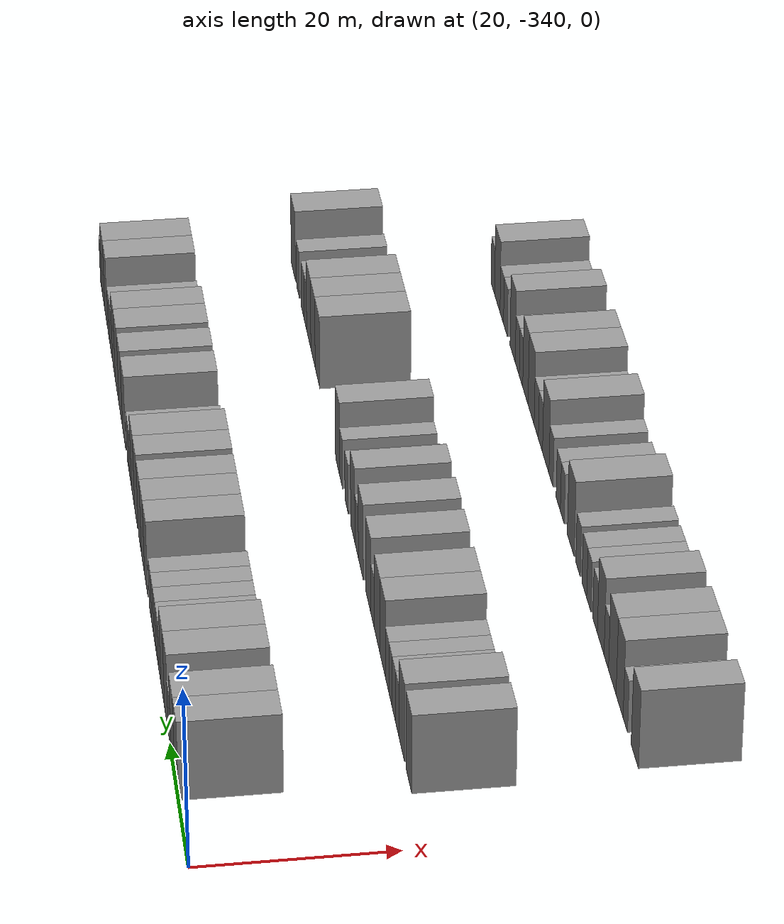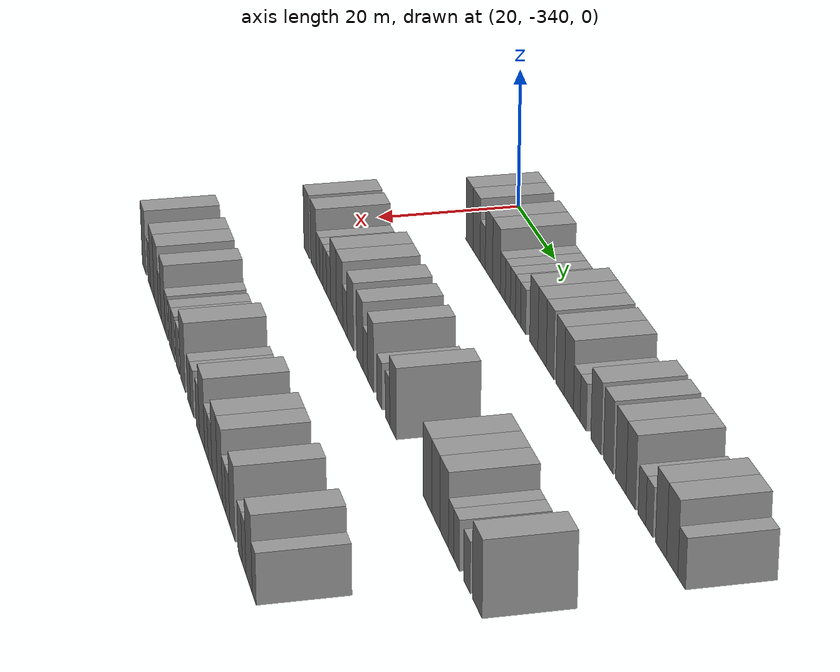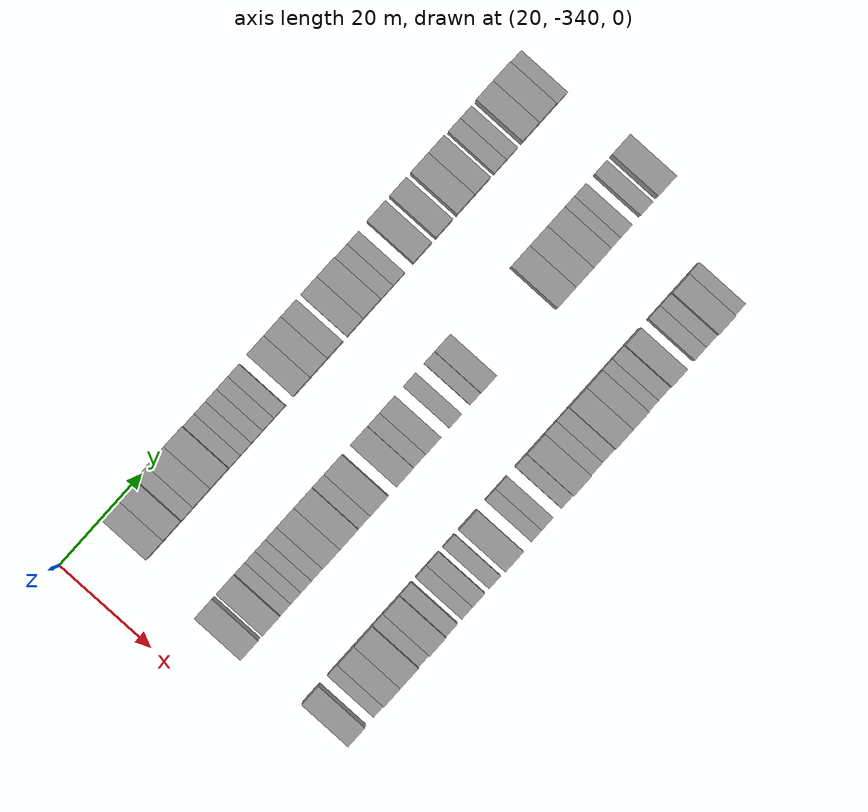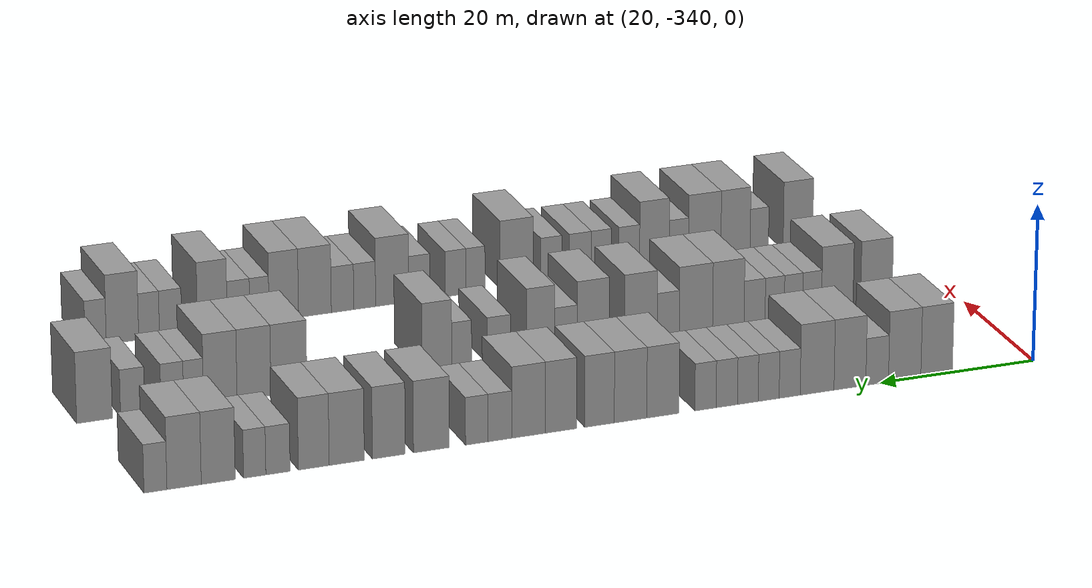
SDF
<sdf version="1.6">
 <world name="default">
  <model name="building_17">
   <static>1</static>
   <pose>25.0000 -327.3460 0 0.000000 0.000000 0.000000</pose>
   <link name="link">
    <pose>0 0 4.50 0 0 0</pose>
    <collision name="collision"><geometry><box><size>10.0000 4.1200 9.0000</size></box></geometry></collision>
    <visual name="visual">
     <cast_shadows>0</cast_shadows>
     <geometry><box><size>10.0000 4.1200 9.0000</size></box></geometry>
     <material>
      <script>
       <uri>model://grey_wall/materials/scripts</uri>
       <uri>model://grey_wall/materials/textures</uri>
       <name>vrc/grey_wall</name>
      </script>
     </material>
    </visual>
   </link>
  </model>
  <model name="building_18">
   <static>1</static>
   <pose>25.0000 -323.1835 0 0.000000 0.000000 0.000000</pose>
   <link name="link">
    <pose>0 0 4.50 0 0 0</pose>
    <collision name="collision"><geometry><box><size>10.0000 4.2051 9.0000</size></box></geometry></collision>
    <visual name="visual">
     <cast_shadows>0</cast_shadows>
     <geometry><box><size>10.0000 4.2051 9.0000</size></box></geometry>
     <material>
      <script>
       <uri>model://grey_wall/materials/scripts</uri>
       <uri>model://grey_wall/materials/textures</uri>
       <name>vrc/grey_wall</name>
      </script>
     </material>
    </visual>
   </link>
  </model>
  <model name="building_19">
   <static>1</static>
   <pose>25.0000 -319.6114 0 0.000000 0.000000 0.000000</pose>
   <link name="link">
    <pose>0 0 3.00 0 0 0</pose>
    <collision name="collision"><geometry><box><size>10.0000 2.9392 6.0000</size></box></geometry></collision>
    <visual name="visual">
     <cast_shadows>0</cast_shadows>
     <geometry><box><size>10.0000 2.9392 6.0000</size></box></geometry>
     <material>
      <script>
       <uri>model://grey_wall/materials/scripts</uri>
       <uri>model://grey_wall/materials/textures</uri>
       <name>vrc/grey_wall</name>
      </script>
     </material>
    </visual>
   </link>
  </model>
  <model name="building_20">
   <static>1</static>
   <pose>25.0000 -316.0873 0 0.000000 0.000000 0.000000</pose>
   <link name="link">
    <pose>0 0 4.50 0 0 0</pose>
    <collision name="collision"><geometry><box><size>10.0000 4.1088 9.0000</size></box></geometry></collision>
    <visual name="visual">
     <cast_shadows>0</cast_shadows>
     <geometry><box><size>10.0000 4.1088 9.0000</size></box></geometry>
     <material>
      <script>
       <uri>model://grey_wall/materials/scripts</uri>
       <uri>model://grey_wall/materials/textures</uri>
       <name>vrc/grey_wall</name>
      </script>
     </material>
    </visual>
   </link>
  </model>
  <model name="building_21">
   <static>1</static>
   <pose>25.0000 -311.8550 0 0.000000 0.000000 0.000000</pose>
   <link name="link">
    <pose>0 0 4.50 0 0 0</pose>
    <collision name="collision"><geometry><box><size>10.0000 4.3558 9.0000</size></box></geometry></collision>
    <visual name="visual">
     <cast_shadows>0</cast_shadows>
     <geometry><box><size>10.0000 4.3558 9.0000</size></box></geometry>
     <material>
      <script>
       <uri>model://grey_wall/materials/scripts</uri>
       <uri>model://grey_wall/materials/textures</uri>
       <name>vrc/grey_wall</name>
      </script>
     </material>
    </visual>
   </link>
  </model>
  <model name="building_22">
   <static>1</static>
   <pose>25.0000 -308.3280 0 0.000000 0.000000 0.000000</pose>
   <link name="link">
    <pose>0 0 3.00 0 0 0</pose>
    <collision name="collision"><geometry><box><size>10.0000 2.6983 6.0000</size></box></geometry></collision>
    <visual name="visual">
     <cast_shadows>0</cast_shadows>
     <geometry><box><size>10.0000 2.6983 6.0000</size></box></geometry>
     <material>
      <script>
       <uri>model://grey_wall/materials/scripts</uri>
       <uri>model://grey_wall/materials/textures</uri>
       <name>vrc/grey_wall</name>
      </script>
     </material>
    </visual>
   </link>
  </model>
  <model name="building_23">
   <static>1</static>
   <pose>25.0000 -305.6368 0 0.000000 0.000000 0.000000</pose>
   <link name="link">
    <pose>0 0 3.00 0 0 0</pose>
    <collision name="collision"><geometry><box><size>10.0000 2.6841 6.0000</size></box></geometry></collision>
    <visual name="visual">
     <cast_shadows>0</cast_shadows>
     <geometry><box><size>10.0000 2.6841 6.0000</size></box></geometry>
     <material>
      <script>
       <uri>model://grey_wall/materials/scripts</uri>
       <uri>model://grey_wall/materials/textures</uri>
       <name>vrc/grey_wall</name>
      </script>
     </material>
    </visual>
   </link>
  </model>
  <model name="building_24">
   <static>1</static>
   <pose>25.0000 -302.9718 0 0.000000 0.000000 0.000000</pose>
   <link name="link">
    <pose>0 0 3.00 0 0 0</pose>
    <collision name="collision"><geometry><box><size>10.0000 2.6458 6.0000</size></box></geometry></collision>
    <visual name="visual">
     <cast_shadows>0</cast_shadows>
     <geometry><box><size>10.0000 2.6458 6.0000</size></box></geometry>
     <material>
      <script>
       <uri>model://grey_wall/materials/scripts</uri>
       <uri>model://grey_wall/materials/textures</uri>
       <name>vrc/grey_wall</name>
      </script>
     </material>
    </visual>
   </link>
  </model>
  <model name="building_25">
   <static>1</static>
   <pose>25.0000 -300.2924 0 0.000000 0.000000 0.000000</pose>
   <link name="link">
    <pose>0 0 3.00 0 0 0</pose>
    <collision name="collision"><geometry><box><size>10.0000 2.7131 6.0000</size></box></geometry></collision>
    <visual name="visual">
     <cast_shadows>0</cast_shadows>
     <geometry><box><size>10.0000 2.7131 6.0000</size></box></geometry>
     <material>
      <script>
       <uri>model://grey_wall/materials/scripts</uri>
       <uri>model://grey_wall/materials/textures</uri>
       <name>vrc/grey_wall</name>
      </script>
     </material>
    </visual>
   </link>
  </model>
  <model name="building_26">
   <static>1</static>
   <pose>25.0000 -297.5843 0 0.000000 0.000000 0.000000</pose>
   <link name="link">
    <pose>0 0 3.00 0 0 0</pose>
    <collision name="collision"><geometry><box><size>10.0000 2.7031 6.0000</size></box></geometry></collision>
    <visual name="visual">
     <cast_shadows>0</cast_shadows>
     <geometry><box><size>10.0000 2.7031 6.0000</size></box></geometry>
     <material>
      <script>
       <uri>model://grey_wall/materials/scripts</uri>
       <uri>model://grey_wall/materials/textures</uri>
       <name>vrc/grey_wall</name>
      </script>
     </material>
    </visual>
   </link>
  </model>
  <model name="building_27">
   <static>1</static>
   <pose>25.0000 -292.1914 0 0.000000 0.000000 0.000000</pose>
   <link name="link">
    <pose>0 0 4.50 0 0 0</pose>
    <collision name="collision"><geometry><box><size>10.0000 4.0827 9.0000</size></box></geometry></collision>
    <visual name="visual">
     <cast_shadows>0</cast_shadows>
     <geometry><box><size>10.0000 4.0827 9.0000</size></box></geometry>
     <material>
      <script>
       <uri>model://grey_wall/materials/scripts</uri>
       <uri>model://grey_wall/materials/textures</uri>
       <name>vrc/grey_wall</name>
      </script>
     </material>
    </visual>
   </link>
  </model>
  <model name="building_28">
   <static>1</static>
   <pose>25.0000 -288.1037 0 0.000000 0.000000 0.000000</pose>
   <link name="link">
    <pose>0 0 4.50 0 0 0</pose>
    <collision name="collision"><geometry><box><size>10.0000 4.0928 9.0000</size></box></geometry></collision>
    <visual name="visual">
     <cast_shadows>0</cast_shadows>
     <geometry><box><size>10.0000 4.0928 9.0000</size></box></geometry>
     <material>
      <script>
       <uri>model://grey_wall/materials/scripts</uri>
       <uri>model://grey_wall/materials/textures</uri>
       <name>vrc/grey_wall</name>
      </script>
     </material>
    </visual>
   </link>
  </model>
  <model name="building_29">
   <static>1</static>
   <pose>25.0000 -284.2097 0 0.000000 0.000000 0.000000</pose>
   <link name="link">
    <pose>0 0 4.50 0 0 0</pose>
    <collision name="collision"><geometry><box><size>10.0000 3.6951 9.0000</size></box></geometry></collision>
    <visual name="visual">
     <cast_shadows>0</cast_shadows>
     <geometry><box><size>10.0000 3.6951 9.0000</size></box></geometry>
     <material>
      <script>
       <uri>model://grey_wall/materials/scripts</uri>
       <uri>model://grey_wall/materials/textures</uri>
       <name>vrc/grey_wall</name>
      </script>
     </material>
    </visual>
   </link>
  </model>
  <model name="building_30">
   <static>1</static>
   <pose>25.0000 -279.4100 0 0.000000 0.000000 0.000000</pose>
   <link name="link">
    <pose>0 0 4.50 0 0 0</pose>
    <collision name="collision"><geometry><box><size>10.0000 3.9044 9.0000</size></box></geometry></collision>
    <visual name="visual">
     <cast_shadows>0</cast_shadows>
     <geometry><box><size>10.0000 3.9044 9.0000</size></box></geometry>
     <material>
      <script>
       <uri>model://grey_wall/materials/scripts</uri>
       <uri>model://grey_wall/materials/textures</uri>
       <name>vrc/grey_wall</name>
      </script>
     </material>
    </visual>
   </link>
  </model>
  <model name="building_31">
   <static>1</static>
   <pose>25.0000 -275.3593 0 0.000000 0.000000 0.000000</pose>
   <link name="link">
    <pose>0 0 4.50 0 0 0</pose>
    <collision name="collision"><geometry><box><size>10.0000 4.1969 9.0000</size></box></geometry></collision>
    <visual name="visual">
     <cast_shadows>0</cast_shadows>
     <geometry><box><size>10.0000 4.1969 9.0000</size></box></geometry>
     <material>
      <script>
       <uri>model://grey_wall/materials/scripts</uri>
       <uri>model://grey_wall/materials/textures</uri>
       <name>vrc/grey_wall</name>
      </script>
     </material>
    </visual>
   </link>
  </model>
  <model name="building_32">
   <static>1</static>
   <pose>25.0000 -271.7904 0 0.000000 0.000000 0.000000</pose>
   <link name="link">
    <pose>0 0 3.00 0 0 0</pose>
    <collision name="collision"><geometry><box><size>10.0000 2.9410 6.0000</size></box></geometry></collision>
    <visual name="visual">
     <cast_shadows>0</cast_shadows>
     <geometry><box><size>10.0000 2.9410 6.0000</size></box></geometry>
     <material>
      <script>
       <uri>model://grey_wall/materials/scripts</uri>
       <uri>model://grey_wall/materials/textures</uri>
       <name>vrc/grey_wall</name>
      </script>
     </material>
    </visual>
   </link>
  </model>
  <model name="building_33">
   <static>1</static>
   <pose>25.0000 -268.9199 0 0.000000 0.000000 0.000000</pose>
   <link name="link">
    <pose>0 0 3.00 0 0 0</pose>
    <collision name="collision"><geometry><box><size>10.0000 2.8000 6.0000</size></box></geometry></collision>
    <visual name="visual">
     <cast_shadows>0</cast_shadows>
     <geometry><box><size>10.0000 2.8000 6.0000</size></box></geometry>
     <material>
      <script>
       <uri>model://grey_wall/materials/scripts</uri>
       <uri>model://grey_wall/materials/textures</uri>
       <name>vrc/grey_wall</name>
      </script>
     </material>
    </visual>
   </link>
  </model>
  <model name="building_34">
   <static>1</static>
   <pose>25.0000 -263.3124 0 0.000000 0.000000 0.000000</pose>
   <link name="link">
    <pose>0 0 4.50 0 0 0</pose>
    <collision name="collision"><geometry><box><size>10.0000 4.4150 9.0000</size></box></geometry></collision>
    <visual name="visual">
     <cast_shadows>0</cast_shadows>
     <geometry><box><size>10.0000 4.4150 9.0000</size></box></geometry>
     <material>
      <script>
       <uri>model://grey_wall/materials/scripts</uri>
       <uri>model://grey_wall/materials/textures</uri>
       <name>vrc/grey_wall</name>
      </script>
     </material>
    </visual>
   </link>
  </model>
  <model name="building_35">
   <static>1</static>
   <pose>25.0000 -258.0931 0 0.000000 0.000000 0.000000</pose>
   <link name="link">
    <pose>0 0 4.50 0 0 0</pose>
    <collision name="collision"><geometry><box><size>10.0000 4.0236 9.0000</size></box></geometry></collision>
    <visual name="visual">
     <cast_shadows>0</cast_shadows>
     <geometry><box><size>10.0000 4.0236 9.0000</size></box></geometry>
     <material>
      <script>
       <uri>model://grey_wall/materials/scripts</uri>
       <uri>model://grey_wall/materials/textures</uri>
       <name>vrc/grey_wall</name>
      </script>
     </material>
    </visual>
   </link>
  </model>
  <model name="building_36">
   <static>1</static>
   <pose>25.0000 -252.9448 0 0.000000 0.000000 0.000000</pose>
   <link name="link">
    <pose>0 0 4.50 0 0 0</pose>
    <collision name="collision"><geometry><box><size>10.0000 4.2731 9.0000</size></box></geometry></collision>
    <visual name="visual">
     <cast_shadows>0</cast_shadows>
     <geometry><box><size>10.0000 4.2731 9.0000</size></box></geometry>
     <material>
      <script>
       <uri>model://grey_wall/materials/scripts</uri>
       <uri>model://grey_wall/materials/textures</uri>
       <name>vrc/grey_wall</name>
      </script>
     </material>
    </visual>
   </link>
  </model>
  <model name="building_37">
   <static>1</static>
   <pose>25.0000 -248.9344 0 0.000000 0.000000 0.000000</pose>
   <link name="link">
    <pose>0 0 4.50 0 0 0</pose>
    <collision name="collision"><geometry><box><size>10.0000 3.7476 9.0000</size></box></geometry></collision>
    <visual name="visual">
     <cast_shadows>0</cast_shadows>
     <geometry><box><size>10.0000 3.7476 9.0000</size></box></geometry>
     <material>
      <script>
       <uri>model://grey_wall/materials/scripts</uri>
       <uri>model://grey_wall/materials/textures</uri>
       <name>vrc/grey_wall</name>
      </script>
     </material>
    </visual>
   </link>
  </model>
  <model name="building_38">
   <static>1</static>
   <pose>25.0000 -244.5937 0 0.000000 0.000000 0.000000</pose>
   <link name="link">
    <pose>0 0 3.00 0 0 0</pose>
    <collision name="collision"><geometry><box><size>10.0000 2.9339 6.0000</size></box></geometry></collision>
    <visual name="visual">
     <cast_shadows>0</cast_shadows>
     <geometry><box><size>10.0000 2.9339 6.0000</size></box></geometry>
     <material>
      <script>
       <uri>model://grey_wall/materials/scripts</uri>
       <uri>model://grey_wall/materials/textures</uri>
       <name>vrc/grey_wall</name>
      </script>
     </material>
    </visual>
   </link>
  </model>
  <model name="building_39">
   <static>1</static>
   <pose>25.0000 -241.7820 0 0.000000 0.000000 0.000000</pose>
   <link name="link">
    <pose>0 0 3.00 0 0 0</pose>
    <collision name="collision"><geometry><box><size>10.0000 2.6894 6.0000</size></box></geometry></collision>
    <visual name="visual">
     <cast_shadows>0</cast_shadows>
     <geometry><box><size>10.0000 2.6894 6.0000</size></box></geometry>
     <material>
      <script>
       <uri>model://grey_wall/materials/scripts</uri>
       <uri>model://grey_wall/materials/textures</uri>
       <name>vrc/grey_wall</name>
      </script>
     </material>
    </visual>
   </link>
  </model>
  <model name="building_40">
   <static>1</static>
   <pose>25.0000 -237.3961 0 0.000000 0.000000 0.000000</pose>
   <link name="link">
    <pose>0 0 4.50 0 0 0</pose>
    <collision name="collision"><geometry><box><size>10.0000 4.0824 9.0000</size></box></geometry></collision>
    <visual name="visual">
     <cast_shadows>0</cast_shadows>
     <geometry><box><size>10.0000 4.0824 9.0000</size></box></geometry>
     <material>
      <script>
       <uri>model://grey_wall/materials/scripts</uri>
       <uri>model://grey_wall/materials/textures</uri>
       <name>vrc/grey_wall</name>
      </script>
     </material>
    </visual>
   </link>
  </model>
  <model name="building_41">
   <static>1</static>
   <pose>25.0000 -233.3007 0 0.000000 0.000000 0.000000</pose>
   <link name="link">
    <pose>0 0 4.50 0 0 0</pose>
    <collision name="collision"><geometry><box><size>10.0000 4.1085 9.0000</size></box></geometry></collision>
    <visual name="visual">
     <cast_shadows>0</cast_shadows>
     <geometry><box><size>10.0000 4.1085 9.0000</size></box></geometry>
     <material>
      <script>
       <uri>model://grey_wall/materials/scripts</uri>
       <uri>model://grey_wall/materials/textures</uri>
       <name>vrc/grey_wall</name>
      </script>
     </material>
    </visual>
   </link>
  </model>
  <model name="building_42">
   <static>1</static>
   <pose>25.0000 -229.8728 0 0.000000 0.000000 0.000000</pose>
   <link name="link">
    <pose>0 0 3.00 0 0 0</pose>
    <collision name="collision"><geometry><box><size>10.0000 2.7473 6.0000</size></box></geometry></collision>
    <visual name="visual">
     <cast_shadows>0</cast_shadows>
     <geometry><box><size>10.0000 2.7473 6.0000</size></box></geometry>
     <material>
      <script>
       <uri>model://grey_wall/materials/scripts</uri>
       <uri>model://grey_wall/materials/textures</uri>
       <name>vrc/grey_wall</name>
      </script>
     </material>
    </visual>
   </link>
  </model>
  <model name="building_207">
   <static>1</static>
   <pose>47.0000 -329.0703 0 0.000000 0.000000 0.000000</pose>
   <link name="link">
    <pose>0 0 4.50 0 0 0</pose>
    <collision name="collision"><geometry><box><size>10.0000 4.2202 9.0000</size></box></geometry></collision>
    <visual name="visual">
     <cast_shadows>0</cast_shadows>
     <geometry><box><size>10.0000 4.2202 9.0000</size></box></geometry>
     <material>
      <script>
       <uri>model://grey_wall/materials/scripts</uri>
       <uri>model://grey_wall/materials/textures</uri>
       <name>vrc/grey_wall</name>
      </script>
     </material>
    </visual>
   </link>
  </model>
  <model name="building_208">
   <static>1</static>
   <pose>47.0000 -323.8616 0 0.000000 0.000000 0.000000</pose>
   <link name="link">
    <pose>0 0 4.50 0 0 0</pose>
    <collision name="collision"><geometry><box><size>10.0000 4.1972 9.0000</size></box></geometry></collision>
    <visual name="visual">
     <cast_shadows>0</cast_shadows>
     <geometry><box><size>10.0000 4.1972 9.0000</size></box></geometry>
     <material>
      <script>
       <uri>model://grey_wall/materials/scripts</uri>
       <uri>model://grey_wall/materials/textures</uri>
       <name>vrc/grey_wall</name>
      </script>
     </material>
    </visual>
   </link>
  </model>
  <model name="building_209">
   <static>1</static>
   <pose>47.0000 -320.5207 0 0.000000 0.000000 0.000000</pose>
   <link name="link">
    <pose>0 0 3.00 0 0 0</pose>
    <collision name="collision"><geometry><box><size>10.0000 2.4846 6.0000</size></box></geometry></collision>
    <visual name="visual">
     <cast_shadows>0</cast_shadows>
     <geometry><box><size>10.0000 2.4846 6.0000</size></box></geometry>
     <material>
      <script>
       <uri>model://grey_wall/materials/scripts</uri>
       <uri>model://grey_wall/materials/textures</uri>
       <name>vrc/grey_wall</name>
      </script>
     </material>
    </visual>
   </link>
  </model>
  <model name="building_210">
   <static>1</static>
   <pose>47.0000 -318.0544 0 0.000000 0.000000 0.000000</pose>
   <link name="link">
    <pose>0 0 3.00 0 0 0</pose>
    <collision name="collision"><geometry><box><size>10.0000 2.4481 6.0000</size></box></geometry></collision>
    <visual name="visual">
     <cast_shadows>0</cast_shadows>
     <geometry><box><size>10.0000 2.4481 6.0000</size></box></geometry>
     <material>
      <script>
       <uri>model://grey_wall/materials/scripts</uri>
       <uri>model://grey_wall/materials/textures</uri>
       <name>vrc/grey_wall</name>
      </script>
     </material>
    </visual>
   </link>
  </model>
  <model name="building_211">
   <static>1</static>
   <pose>47.0000 -315.5675 0 0.000000 0.000000 0.000000</pose>
   <link name="link">
    <pose>0 0 3.00 0 0 0</pose>
    <collision name="collision"><geometry><box><size>10.0000 2.5256 6.0000</size></box></geometry></collision>
    <visual name="visual">
     <cast_shadows>0</cast_shadows>
     <geometry><box><size>10.0000 2.5256 6.0000</size></box></geometry>
     <material>
      <script>
       <uri>model://grey_wall/materials/scripts</uri>
       <uri>model://grey_wall/materials/textures</uri>
       <name>vrc/grey_wall</name>
      </script>
     </material>
    </visual>
   </link>
  </model>
  <model name="building_212">
   <static>1</static>
   <pose>47.0000 -312.9240 0 0.000000 0.000000 0.000000</pose>
   <link name="link">
    <pose>0 0 3.00 0 0 0</pose>
    <collision name="collision"><geometry><box><size>10.0000 2.7615 6.0000</size></box></geometry></collision>
    <visual name="visual">
     <cast_shadows>0</cast_shadows>
     <geometry><box><size>10.0000 2.7615 6.0000</size></box></geometry>
     <material>
      <script>
       <uri>model://grey_wall/materials/scripts</uri>
       <uri>model://grey_wall/materials/textures</uri>
       <name>vrc/grey_wall</name>
      </script>
     </material>
    </visual>
   </link>
  </model>
  <model name="building_213">
   <static>1</static>
   <pose>47.0000 -309.4773 0 0.000000 0.000000 0.000000</pose>
   <link name="link">
    <pose>0 0 4.50 0 0 0</pose>
    <collision name="collision"><geometry><box><size>10.0000 4.1317 9.0000</size></box></geometry></collision>
    <visual name="visual">
     <cast_shadows>0</cast_shadows>
     <geometry><box><size>10.0000 4.1317 9.0000</size></box></geometry>
     <material>
      <script>
       <uri>model://grey_wall/materials/scripts</uri>
       <uri>model://grey_wall/materials/textures</uri>
       <name>vrc/grey_wall</name>
      </script>
     </material>
    </visual>
   </link>
  </model>
  <model name="building_214">
   <static>1</static>
   <pose>47.0000 -305.2326 0 0.000000 0.000000 0.000000</pose>
   <link name="link">
    <pose>0 0 4.50 0 0 0</pose>
    <collision name="collision"><geometry><box><size>10.0000 4.3578 9.0000</size></box></geometry></collision>
    <visual name="visual">
     <cast_shadows>0</cast_shadows>
     <geometry><box><size>10.0000 4.3578 9.0000</size></box></geometry>
     <material>
      <script>
       <uri>model://grey_wall/materials/scripts</uri>
       <uri>model://grey_wall/materials/textures</uri>
       <name>vrc/grey_wall</name>
      </script>
     </material>
    </visual>
   </link>
  </model>
  <model name="building_215">
   <static>1</static>
   <pose>47.0000 -301.6247 0 0.000000 0.000000 0.000000</pose>
   <link name="link">
    <pose>0 0 3.00 0 0 0</pose>
    <collision name="collision"><geometry><box><size>10.0000 2.8580 6.0000</size></box></geometry></collision>
    <visual name="visual">
     <cast_shadows>0</cast_shadows>
     <geometry><box><size>10.0000 2.8580 6.0000</size></box></geometry>
     <material>
      <script>
       <uri>model://grey_wall/materials/scripts</uri>
       <uri>model://grey_wall/materials/textures</uri>
       <name>vrc/grey_wall</name>
      </script>
     </material>
    </visual>
   </link>
  </model>
  <model name="building_216">
   <static>1</static>
   <pose>47.0000 -298.0639 0 0.000000 0.000000 0.000000</pose>
   <link name="link">
    <pose>0 0 4.50 0 0 0</pose>
    <collision name="collision"><geometry><box><size>10.0000 4.2637 9.0000</size></box></geometry></collision>
    <visual name="visual">
     <cast_shadows>0</cast_shadows>
     <geometry><box><size>10.0000 4.2637 9.0000</size></box></geometry>
     <material>
      <script>
       <uri>model://grey_wall/materials/scripts</uri>
       <uri>model://grey_wall/materials/textures</uri>
       <name>vrc/grey_wall</name>
      </script>
     </material>
    </visual>
   </link>
  </model>
  <model name="building_217">
   <static>1</static>
   <pose>47.0000 -291.8824 0 0.000000 0.000000 0.000000</pose>
   <link name="link">
    <pose>0 0 4.50 0 0 0</pose>
    <collision name="collision"><geometry><box><size>10.0000 4.0992 9.0000</size></box></geometry></collision>
    <visual name="visual">
     <cast_shadows>0</cast_shadows>
     <geometry><box><size>10.0000 4.0992 9.0000</size></box></geometry>
     <material>
      <script>
       <uri>model://grey_wall/materials/scripts</uri>
       <uri>model://grey_wall/materials/textures</uri>
       <name>vrc/grey_wall</name>
      </script>
     </material>
    </visual>
   </link>
  </model>
  <model name="building_218">
   <static>1</static>
   <pose>47.0000 -288.3813 0 0.000000 0.000000 0.000000</pose>
   <link name="link">
    <pose>0 0 3.00 0 0 0</pose>
    <collision name="collision"><geometry><box><size>10.0000 2.9030 6.0000</size></box></geometry></collision>
    <visual name="visual">
     <cast_shadows>0</cast_shadows>
     <geometry><box><size>10.0000 2.9030 6.0000</size></box></geometry>
     <material>
      <script>
       <uri>model://grey_wall/materials/scripts</uri>
       <uri>model://grey_wall/materials/textures</uri>
       <name>vrc/grey_wall</name>
      </script>
     </material>
    </visual>
   </link>
  </model>
  <model name="building_219">
   <static>1</static>
   <pose>47.0000 -285.1009 0 0.000000 0.000000 0.000000</pose>
   <link name="link">
    <pose>0 0 4.50 0 0 0</pose>
    <collision name="collision"><geometry><box><size>10.0000 3.6578 9.0000</size></box></geometry></collision>
    <visual name="visual">
     <cast_shadows>0</cast_shadows>
     <geometry><box><size>10.0000 3.6578 9.0000</size></box></geometry>
     <material>
      <script>
       <uri>model://grey_wall/materials/scripts</uri>
       <uri>model://grey_wall/materials/textures</uri>
       <name>vrc/grey_wall</name>
      </script>
     </material>
    </visual>
   </link>
  </model>
  <model name="building_220">
   <static>1</static>
   <pose>47.0000 -279.7737 0 0.000000 0.000000 0.000000</pose>
   <link name="link">
    <pose>0 0 3.00 0 0 0</pose>
    <collision name="collision"><geometry><box><size>10.0000 2.9966 6.0000</size></box></geometry></collision>
    <visual name="visual">
     <cast_shadows>0</cast_shadows>
     <geometry><box><size>10.0000 2.9966 6.0000</size></box></geometry>
     <material>
      <script>
       <uri>model://grey_wall/materials/scripts</uri>
       <uri>model://grey_wall/materials/textures</uri>
       <name>vrc/grey_wall</name>
      </script>
     </material>
    </visual>
   </link>
  </model>
  <model name="building_221">
   <static>1</static>
   <pose>47.0000 -275.0089 0 0.000000 0.000000 0.000000</pose>
   <link name="link">
    <pose>0 0 3.00 0 0 0</pose>
    <collision name="collision"><geometry><box><size>10.0000 2.5331 6.0000</size></box></geometry></collision>
    <visual name="visual">
     <cast_shadows>0</cast_shadows>
     <geometry><box><size>10.0000 2.5331 6.0000</size></box></geometry>
     <material>
      <script>
       <uri>model://grey_wall/materials/scripts</uri>
       <uri>model://grey_wall/materials/textures</uri>
       <name>vrc/grey_wall</name>
      </script>
     </material>
    </visual>
   </link>
  </model>
  <model name="building_222">
   <static>1</static>
   <pose>47.0000 -271.8632 0 0.000000 0.000000 0.000000</pose>
   <link name="link">
    <pose>0 0 4.50 0 0 0</pose>
    <collision name="collision"><geometry><box><size>10.0000 3.7582 9.0000</size></box></geometry></collision>
    <visual name="visual">
     <cast_shadows>0</cast_shadows>
     <geometry><box><size>10.0000 3.7582 9.0000</size></box></geometry>
     <material>
      <script>
       <uri>model://grey_wall/materials/scripts</uri>
       <uri>model://grey_wall/materials/textures</uri>
       <name>vrc/grey_wall</name>
      </script>
     </material>
    </visual>
   </link>
  </model>
  <model name="building_223">
   <static>1</static>
   <pose>47.0000 -253.2428 0 0.000000 0.000000 0.000000</pose>
   <link name="link">
    <pose>0 0 4.50 0 0 0</pose>
    <collision name="collision"><geometry><box><size>10.0000 4.4942 9.0000</size></box></geometry></collision>
    <visual name="visual">
     <cast_shadows>0</cast_shadows>
     <geometry><box><size>10.0000 4.4942 9.0000</size></box></geometry>
     <material>
      <script>
       <uri>model://grey_wall/materials/scripts</uri>
       <uri>model://grey_wall/materials/textures</uri>
       <name>vrc/grey_wall</name>
      </script>
     </material>
    </visual>
   </link>
  </model>
  <model name="building_224">
   <static>1</static>
   <pose>47.0000 -248.8892 0 0.000000 0.000000 0.000000</pose>
   <link name="link">
    <pose>0 0 4.50 0 0 0</pose>
    <collision name="collision"><geometry><box><size>10.0000 4.2130 9.0000</size></box></geometry></collision>
    <visual name="visual">
     <cast_shadows>0</cast_shadows>
     <geometry><box><size>10.0000 4.2130 9.0000</size></box></geometry>
     <material>
      <script>
       <uri>model://grey_wall/materials/scripts</uri>
       <uri>model://grey_wall/materials/textures</uri>
       <name>vrc/grey_wall</name>
      </script>
     </material>
    </visual>
   </link>
  </model>
  <model name="building_225">
   <static>1</static>
   <pose>47.0000 -244.7073 0 0.000000 0.000000 0.000000</pose>
   <link name="link">
    <pose>0 0 4.50 0 0 0</pose>
    <collision name="collision"><geometry><box><size>10.0000 4.1508 9.0000</size></box></geometry></collision>
    <visual name="visual">
     <cast_shadows>0</cast_shadows>
     <geometry><box><size>10.0000 4.1508 9.0000</size></box></geometry>
     <material>
      <script>
       <uri>model://grey_wall/materials/scripts</uri>
       <uri>model://grey_wall/materials/textures</uri>
       <name>vrc/grey_wall</name>
      </script>
     </material>
    </visual>
   </link>
  </model>
  <model name="building_226">
   <static>1</static>
   <pose>47.0000 -241.4015 0 0.000000 0.000000 0.000000</pose>
   <link name="link">
    <pose>0 0 3.00 0 0 0</pose>
    <collision name="collision"><geometry><box><size>10.0000 2.4606 6.0000</size></box></geometry></collision>
    <visual name="visual">
     <cast_shadows>0</cast_shadows>
     <geometry><box><size>10.0000 2.4606 6.0000</size></box></geometry>
     <material>
      <script>
       <uri>model://grey_wall/materials/scripts</uri>
       <uri>model://grey_wall/materials/textures</uri>
       <name>vrc/grey_wall</name>
      </script>
     </material>
    </visual>
   </link>
  </model>
  <model name="building_227">
   <static>1</static>
   <pose>47.0000 -238.7744 0 0.000000 0.000000 0.000000</pose>
   <link name="link">
    <pose>0 0 3.00 0 0 0</pose>
    <collision name="collision"><geometry><box><size>10.0000 2.7937 6.0000</size></box></geometry></collision>
    <visual name="visual">
     <cast_shadows>0</cast_shadows>
     <geometry><box><size>10.0000 2.7937 6.0000</size></box></geometry>
     <material>
      <script>
       <uri>model://grey_wall/materials/scripts</uri>
       <uri>model://grey_wall/materials/textures</uri>
       <name>vrc/grey_wall</name>
      </script>
     </material>
    </visual>
   </link>
  </model>
  <model name="building_228">
   <static>1</static>
   <pose>47.0000 -233.8921 0 0.000000 0.000000 0.000000</pose>
   <link name="link">
    <pose>0 0 3.00 0 0 0</pose>
    <collision name="collision"><geometry><box><size>10.0000 2.9710 6.0000</size></box></geometry></collision>
    <visual name="visual">
     <cast_shadows>0</cast_shadows>
     <geometry><box><size>10.0000 2.9710 6.0000</size></box></geometry>
     <material>
      <script>
       <uri>model://grey_wall/materials/scripts</uri>
       <uri>model://grey_wall/materials/textures</uri>
       <name>vrc/grey_wall</name>
      </script>
     </material>
    </visual>
   </link>
  </model>
  <model name="building_229">
   <static>1</static>
   <pose>47.0000 -229.2226 0 0.000000 0.000000 0.000000</pose>
   <link name="link">
    <pose>0 0 4.50 0 0 0</pose>
    <collision name="collision"><geometry><box><size>10.0000 4.3680 9.0000</size></box></geometry></collision>
    <visual name="visual">
     <cast_shadows>0</cast_shadows>
     <geometry><box><size>10.0000 4.3680 9.0000</size></box></geometry>
     <material>
      <script>
       <uri>model://grey_wall/materials/scripts</uri>
       <uri>model://grey_wall/materials/textures</uri>
       <name>vrc/grey_wall</name>
      </script>
     </material>
    </visual>
   </link>
  </model>
  <model name="building_393">
   <static>1</static>
   <pose>69.0000 -327.9179 0 0.000000 0.000000 0.000000</pose>
   <link name="link">
    <pose>0 0 4.50 0 0 0</pose>
    <collision name="collision"><geometry><box><size>10.0000 4.0322 9.0000</size></box></geometry></collision>
    <visual name="visual">
     <cast_shadows>0</cast_shadows>
     <geometry><box><size>10.0000 4.0322 9.0000</size></box></geometry>
     <material>
      <script>
       <uri>model://grey_wall/materials/scripts</uri>
       <uri>model://grey_wall/materials/textures</uri>
       <name>vrc/grey_wall</name>
      </script>
     </material>
    </visual>
   </link>
  </model>
  <model name="building_394">
   <static>1</static>
   <pose>69.0000 -322.6602 0 0.000000 0.000000 0.000000</pose>
   <link name="link">
    <pose>0 0 3.00 0 0 0</pose>
    <collision name="collision"><geometry><box><size>10.0000 2.4833 6.0000</size></box></geometry></collision>
    <visual name="visual">
     <cast_shadows>0</cast_shadows>
     <geometry><box><size>10.0000 2.4833 6.0000</size></box></geometry>
     <material>
      <script>
       <uri>model://grey_wall/materials/scripts</uri>
       <uri>model://grey_wall/materials/textures</uri>
       <name>vrc/grey_wall</name>
      </script>
     </material>
    </visual>
   </link>
  </model>
  <model name="building_395">
   <static>1</static>
   <pose>69.0000 -319.4353 0 0.000000 0.000000 0.000000</pose>
   <link name="link">
    <pose>0 0 4.50 0 0 0</pose>
    <collision name="collision"><geometry><box><size>10.0000 3.9664 9.0000</size></box></geometry></collision>
    <visual name="visual">
     <cast_shadows>0</cast_shadows>
     <geometry><box><size>10.0000 3.9664 9.0000</size></box></geometry>
     <material>
      <script>
       <uri>model://grey_wall/materials/scripts</uri>
       <uri>model://grey_wall/materials/textures</uri>
       <name>vrc/grey_wall</name>
      </script>
     </material>
    </visual>
   </link>
  </model>
  <model name="building_396">
   <static>1</static>
   <pose>69.0000 -315.2718 0 0.000000 0.000000 0.000000</pose>
   <link name="link">
    <pose>0 0 4.50 0 0 0</pose>
    <collision name="collision"><geometry><box><size>10.0000 4.3606 9.0000</size></box></geometry></collision>
    <visual name="visual">
     <cast_shadows>0</cast_shadows>
     <geometry><box><size>10.0000 4.3606 9.0000</size></box></geometry>
     <material>
      <script>
       <uri>model://grey_wall/materials/scripts</uri>
       <uri>model://grey_wall/materials/textures</uri>
       <name>vrc/grey_wall</name>
      </script>
     </material>
    </visual>
   </link>
  </model>
  <model name="building_397">
   <static>1</static>
   <pose>69.0000 -311.7827 0 0.000000 0.000000 0.000000</pose>
   <link name="link">
    <pose>0 0 3.00 0 0 0</pose>
    <collision name="collision"><geometry><box><size>10.0000 2.6175 6.0000</size></box></geometry></collision>
    <visual name="visual">
     <cast_shadows>0</cast_shadows>
     <geometry><box><size>10.0000 2.6175 6.0000</size></box></geometry>
     <material>
      <script>
       <uri>model://grey_wall/materials/scripts</uri>
       <uri>model://grey_wall/materials/textures</uri>
       <name>vrc/grey_wall</name>
      </script>
     </material>
    </visual>
   </link>
  </model>
  <model name="building_398">
   <static>1</static>
   <pose>69.0000 -308.5019 0 0.000000 0.000000 0.000000</pose>
   <link name="link">
    <pose>0 0 4.50 0 0 0</pose>
    <collision name="collision"><geometry><box><size>10.0000 3.9441 9.0000</size></box></geometry></collision>
    <visual name="visual">
     <cast_shadows>0</cast_shadows>
     <geometry><box><size>10.0000 3.9441 9.0000</size></box></geometry>
     <material>
      <script>
       <uri>model://grey_wall/materials/scripts</uri>
       <uri>model://grey_wall/materials/textures</uri>
       <name>vrc/grey_wall</name>
      </script>
     </material>
    </visual>
   </link>
  </model>
  <model name="building_399">
   <static>1</static>
   <pose>69.0000 -305.1388 0 0.000000 0.000000 0.000000</pose>
   <link name="link">
    <pose>0 0 3.00 0 0 0</pose>
    <collision name="collision"><geometry><box><size>10.0000 2.7823 6.0000</size></box></geometry></collision>
    <visual name="visual">
     <cast_shadows>0</cast_shadows>
     <geometry><box><size>10.0000 2.7823 6.0000</size></box></geometry>
     <material>
      <script>
       <uri>model://grey_wall/materials/scripts</uri>
       <uri>model://grey_wall/materials/textures</uri>
       <name>vrc/grey_wall</name>
      </script>
     </material>
    </visual>
   </link>
  </model>
  <model name="building_400">
   <static>1</static>
   <pose>69.0000 -301.4303 0 0.000000 0.000000 0.000000</pose>
   <link name="link">
    <pose>0 0 3.00 0 0 0</pose>
    <collision name="collision"><geometry><box><size>10.0000 2.6345 6.0000</size></box></geometry></collision>
    <visual name="visual">
     <cast_shadows>0</cast_shadows>
     <geometry><box><size>10.0000 2.6345 6.0000</size></box></geometry>
     <material>
      <script>
       <uri>model://grey_wall/materials/scripts</uri>
       <uri>model://grey_wall/materials/textures</uri>
       <name>vrc/grey_wall</name>
      </script>
     </material>
    </visual>
   </link>
  </model>
  <model name="building_401">
   <static>1</static>
   <pose>69.0000 -298.6455 0 0.000000 0.000000 0.000000</pose>
   <link name="link">
    <pose>0 0 3.00 0 0 0</pose>
    <collision name="collision"><geometry><box><size>10.0000 2.9351 6.0000</size></box></geometry></collision>
    <visual name="visual">
     <cast_shadows>0</cast_shadows>
     <geometry><box><size>10.0000 2.9351 6.0000</size></box></geometry>
     <material>
      <script>
       <uri>model://grey_wall/materials/scripts</uri>
       <uri>model://grey_wall/materials/textures</uri>
       <name>vrc/grey_wall</name>
      </script>
     </material>
    </visual>
   </link>
  </model>
  <model name="building_402">
   <static>1</static>
   <pose>69.0000 -294.7862 0 0.000000 0.000000 0.000000</pose>
   <link name="link">
    <pose>0 0 3.00 0 0 0</pose>
    <collision name="collision"><geometry><box><size>10.0000 2.7835 6.0000</size></box></geometry></collision>
    <visual name="visual">
     <cast_shadows>0</cast_shadows>
     <geometry><box><size>10.0000 2.7835 6.0000</size></box></geometry>
     <material>
      <script>
       <uri>model://grey_wall/materials/scripts</uri>
       <uri>model://grey_wall/materials/textures</uri>
       <name>vrc/grey_wall</name>
      </script>
     </material>
    </visual>
   </link>
  </model>
  <model name="building_403">
   <static>1</static>
   <pose>69.0000 -290.2115 0 0.000000 0.000000 0.000000</pose>
   <link name="link">
    <pose>0 0 4.50 0 0 0</pose>
    <collision name="collision"><geometry><box><size>10.0000 4.3660 9.0000</size></box></geometry></collision>
    <visual name="visual">
     <cast_shadows>0</cast_shadows>
     <geometry><box><size>10.0000 4.3660 9.0000</size></box></geometry>
     <material>
      <script>
       <uri>model://grey_wall/materials/scripts</uri>
       <uri>model://grey_wall/materials/textures</uri>
       <name>vrc/grey_wall</name>
      </script>
     </material>
    </visual>
   </link>
  </model>
  <model name="building_404">
   <static>1</static>
   <pose>69.0000 -284.7836 0 0.000000 0.000000 0.000000</pose>
   <link name="link">
    <pose>0 0 3.00 0 0 0</pose>
    <collision name="collision"><geometry><box><size>10.0000 2.4897 6.0000</size></box></geometry></collision>
    <visual name="visual">
     <cast_shadows>0</cast_shadows>
     <geometry><box><size>10.0000 2.4897 6.0000</size></box></geometry>
     <material>
      <script>
       <uri>model://grey_wall/materials/scripts</uri>
       <uri>model://grey_wall/materials/textures</uri>
       <name>vrc/grey_wall</name>
      </script>
     </material>
    </visual>
   </link>
  </model>
  <model name="building_405">
   <static>1</static>
   <pose>69.0000 -282.1656 0 0.000000 0.000000 0.000000</pose>
   <link name="link">
    <pose>0 0 3.00 0 0 0</pose>
    <collision name="collision"><geometry><box><size>10.0000 2.7463 6.0000</size></box></geometry></collision>
    <visual name="visual">
     <cast_shadows>0</cast_shadows>
     <geometry><box><size>10.0000 2.7463 6.0000</size></box></geometry>
     <material>
      <script>
       <uri>model://grey_wall/materials/scripts</uri>
       <uri>model://grey_wall/materials/textures</uri>
       <name>vrc/grey_wall</name>
      </script>
     </material>
    </visual>
   </link>
  </model>
  <model name="building_406">
   <static>1</static>
   <pose>69.0000 -277.4282 0 0.000000 0.000000 0.000000</pose>
   <link name="link">
    <pose>0 0 3.00 0 0 0</pose>
    <collision name="collision"><geometry><box><size>10.0000 2.7286 6.0000</size></box></geometry></collision>
    <visual name="visual">
     <cast_shadows>0</cast_shadows>
     <geometry><box><size>10.0000 2.7286 6.0000</size></box></geometry>
     <material>
      <script>
       <uri>model://grey_wall/materials/scripts</uri>
       <uri>model://grey_wall/materials/textures</uri>
       <name>vrc/grey_wall</name>
      </script>
     </material>
    </visual>
   </link>
  </model>
  <model name="building_407">
   <static>1</static>
   <pose>69.0000 -273.9022 0 0.000000 0.000000 0.000000</pose>
   <link name="link">
    <pose>0 0 4.50 0 0 0</pose>
    <collision name="collision"><geometry><box><size>10.0000 4.3232 9.0000</size></box></geometry></collision>
    <visual name="visual">
     <cast_shadows>0</cast_shadows>
     <geometry><box><size>10.0000 4.3232 9.0000</size></box></geometry>
     <material>
      <script>
       <uri>model://grey_wall/materials/scripts</uri>
       <uri>model://grey_wall/materials/textures</uri>
       <name>vrc/grey_wall</name>
      </script>
     </material>
    </visual>
   </link>
  </model>
  <model name="building_408">
   <static>1</static>
   <pose>69.0000 -270.3213 0 0.000000 0.000000 0.000000</pose>
   <link name="link">
    <pose>0 0 3.00 0 0 0</pose>
    <collision name="collision"><geometry><box><size>10.0000 2.8386 6.0000</size></box></geometry></collision>
    <visual name="visual">
     <cast_shadows>0</cast_shadows>
     <geometry><box><size>10.0000 2.8386 6.0000</size></box></geometry>
     <material>
      <script>
       <uri>model://grey_wall/materials/scripts</uri>
       <uri>model://grey_wall/materials/textures</uri>
       <name>vrc/grey_wall</name>
      </script>
     </material>
    </visual>
   </link>
  </model>
  <model name="building_409">
   <static>1</static>
   <pose>69.0000 -267.4506 0 0.000000 0.000000 0.000000</pose>
   <link name="link">
    <pose>0 0 3.00 0 0 0</pose>
    <collision name="collision"><geometry><box><size>10.0000 2.9029 6.0000</size></box></geometry></collision>
    <visual name="visual">
     <cast_shadows>0</cast_shadows>
     <geometry><box><size>10.0000 2.9029 6.0000</size></box></geometry>
     <material>
      <script>
       <uri>model://grey_wall/materials/scripts</uri>
       <uri>model://grey_wall/materials/textures</uri>
       <name>vrc/grey_wall</name>
      </script>
     </material>
    </visual>
   </link>
  </model>
  <model name="building_410">
   <static>1</static>
   <pose>69.0000 -263.8898 0 0.000000 0.000000 0.000000</pose>
   <link name="link">
    <pose>0 0 4.50 0 0 0</pose>
    <collision name="collision"><geometry><box><size>10.0000 4.2186 9.0000</size></box></geometry></collision>
    <visual name="visual">
     <cast_shadows>0</cast_shadows>
     <geometry><box><size>10.0000 4.2186 9.0000</size></box></geometry>
     <material>
      <script>
       <uri>model://grey_wall/materials/scripts</uri>
       <uri>model://grey_wall/materials/textures</uri>
       <name>vrc/grey_wall</name>
      </script>
     </material>
    </visual>
   </link>
  </model>
  <model name="building_411">
   <static>1</static>
   <pose>69.0000 -259.8878 0 0.000000 0.000000 0.000000</pose>
   <link name="link">
    <pose>0 0 4.50 0 0 0</pose>
    <collision name="collision"><geometry><box><size>10.0000 3.7854 9.0000</size></box></geometry></collision>
    <visual name="visual">
     <cast_shadows>0</cast_shadows>
     <geometry><box><size>10.0000 3.7854 9.0000</size></box></geometry>
     <material>
      <script>
       <uri>model://grey_wall/materials/scripts</uri>
       <uri>model://grey_wall/materials/textures</uri>
       <name>vrc/grey_wall</name>
      </script>
     </material>
    </visual>
   </link>
  </model>
  <model name="building_412">
   <static>1</static>
   <pose>69.0000 -256.7623 0 0.000000 0.000000 0.000000</pose>
   <link name="link">
    <pose>0 0 3.00 0 0 0</pose>
    <collision name="collision"><geometry><box><size>10.0000 2.4658 6.0000</size></box></geometry></collision>
    <visual name="visual">
     <cast_shadows>0</cast_shadows>
     <geometry><box><size>10.0000 2.4658 6.0000</size></box></geometry>
     <material>
      <script>
       <uri>model://grey_wall/materials/scripts</uri>
       <uri>model://grey_wall/materials/textures</uri>
       <name>vrc/grey_wall</name>
      </script>
     </material>
    </visual>
   </link>
  </model>
  <model name="building_413">
   <static>1</static>
   <pose>69.0000 -254.0870 0 0.000000 0.000000 0.000000</pose>
   <link name="link">
    <pose>0 0 3.00 0 0 0</pose>
    <collision name="collision"><geometry><box><size>10.0000 2.8847 6.0000</size></box></geometry></collision>
    <visual name="visual">
     <cast_shadows>0</cast_shadows>
     <geometry><box><size>10.0000 2.8847 6.0000</size></box></geometry>
     <material>
      <script>
       <uri>model://grey_wall/materials/scripts</uri>
       <uri>model://grey_wall/materials/textures</uri>
       <name>vrc/grey_wall</name>
      </script>
     </material>
    </visual>
   </link>
  </model>
  <model name="building_414">
   <static>1</static>
   <pose>69.0000 -250.7505 0 0.000000 0.000000 0.000000</pose>
   <link name="link">
    <pose>0 0 4.50 0 0 0</pose>
    <collision name="collision"><geometry><box><size>10.0000 3.7883 9.0000</size></box></geometry></collision>
    <visual name="visual">
     <cast_shadows>0</cast_shadows>
     <geometry><box><size>10.0000 3.7883 9.0000</size></box></geometry>
     <material>
      <script>
       <uri>model://grey_wall/materials/scripts</uri>
       <uri>model://grey_wall/materials/textures</uri>
       <name>vrc/grey_wall</name>
      </script>
     </material>
    </visual>
   </link>
  </model>
  <model name="building_415">
   <static>1</static>
   <pose>69.0000 -245.4355 0 0.000000 0.000000 0.000000</pose>
   <link name="link">
    <pose>0 0 3.00 0 0 0</pose>
    <collision name="collision"><geometry><box><size>10.0000 2.8417 6.0000</size></box></geometry></collision>
    <visual name="visual">
     <cast_shadows>0</cast_shadows>
     <geometry><box><size>10.0000 2.8417 6.0000</size></box></geometry>
     <material>
      <script>
       <uri>model://grey_wall/materials/scripts</uri>
       <uri>model://grey_wall/materials/textures</uri>
       <name>vrc/grey_wall</name>
      </script>
     </material>
    </visual>
   </link>
  </model>
  <model name="building_416">
   <static>1</static>
   <pose>69.0000 -242.7010 0 0.000000 0.000000 0.000000</pose>
   <link name="link">
    <pose>0 0 3.00 0 0 0</pose>
    <collision name="collision"><geometry><box><size>10.0000 2.6273 6.0000</size></box></geometry></collision>
    <visual name="visual">
     <cast_shadows>0</cast_shadows>
     <geometry><box><size>10.0000 2.6273 6.0000</size></box></geometry>
     <material>
      <script>
       <uri>model://grey_wall/materials/scripts</uri>
       <uri>model://grey_wall/materials/textures</uri>
       <name>vrc/grey_wall</name>
      </script>
     </material>
    </visual>
   </link>
  </model>
  <model name="building_417">
   <static>1</static>
   <pose>69.0000 -239.3438 0 0.000000 0.000000 0.000000</pose>
   <link name="link">
    <pose>0 0 4.50 0 0 0</pose>
    <collision name="collision"><geometry><box><size>10.0000 4.0872 9.0000</size></box></geometry></collision>
    <visual name="visual">
     <cast_shadows>0</cast_shadows>
     <geometry><box><size>10.0000 4.0872 9.0000</size></box></geometry>
     <material>
      <script>
       <uri>model://grey_wall/materials/scripts</uri>
       <uri>model://grey_wall/materials/textures</uri>
       <name>vrc/grey_wall</name>
      </script>
     </material>
    </visual>
   </link>
  </model>
  <model name="building_418">
   <static>1</static>
   <pose>69.0000 -235.9718 0 0.000000 0.000000 0.000000</pose>
   <link name="link">
    <pose>0 0 3.00 0 0 0</pose>
    <collision name="collision"><geometry><box><size>10.0000 2.6567 6.0000</size></box></geometry></collision>
    <visual name="visual">
     <cast_shadows>0</cast_shadows>
     <geometry><box><size>10.0000 2.6567 6.0000</size></box></geometry>
     <material>
      <script>
       <uri>model://grey_wall/materials/scripts</uri>
       <uri>model://grey_wall/materials/textures</uri>
       <name>vrc/grey_wall</name>
      </script>
     </material>
    </visual>
   </link>
  </model>
 </world>
</sdf>
